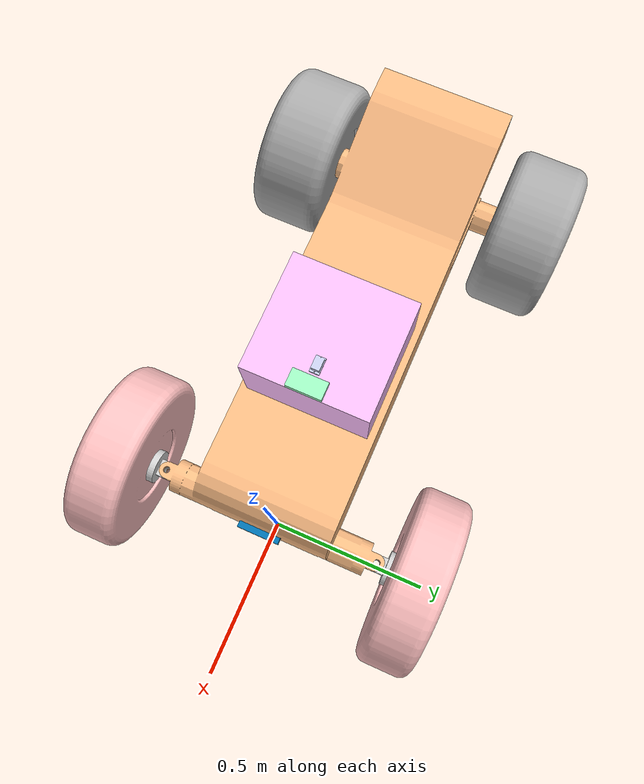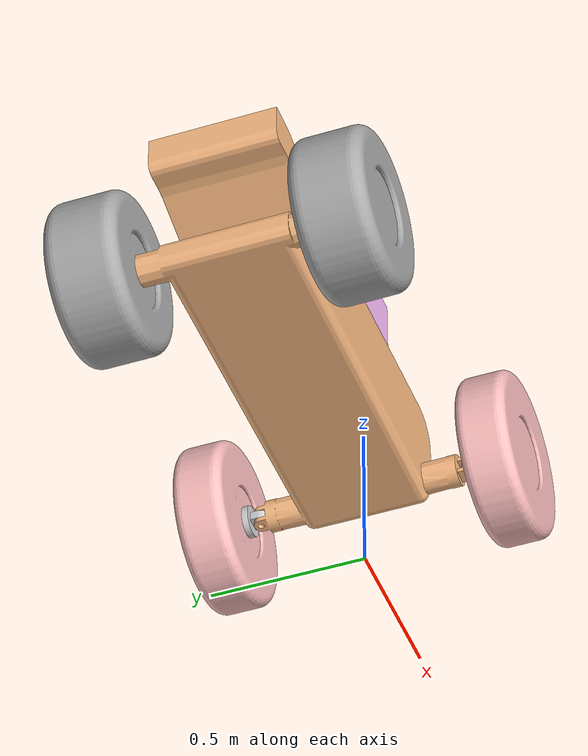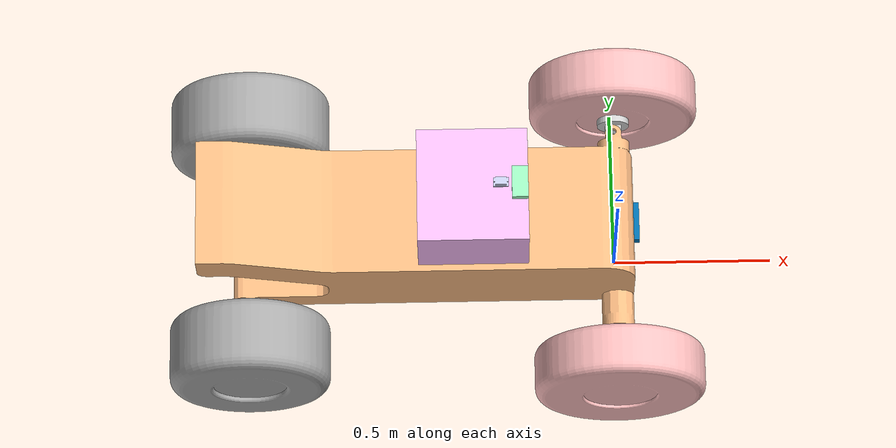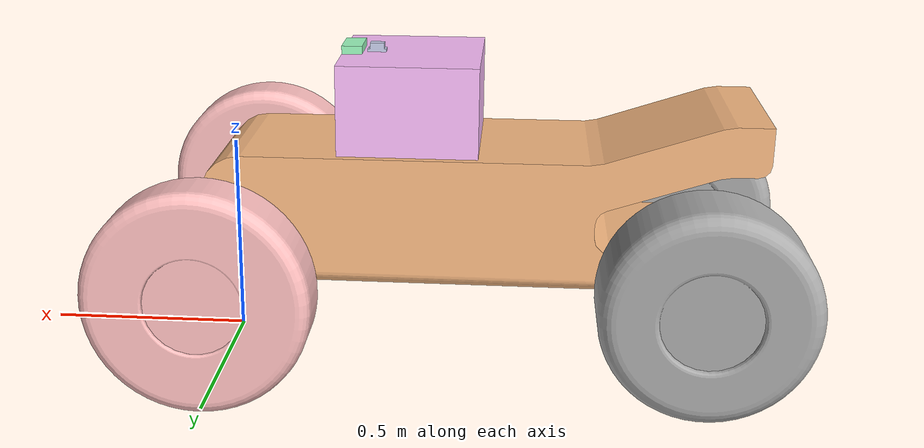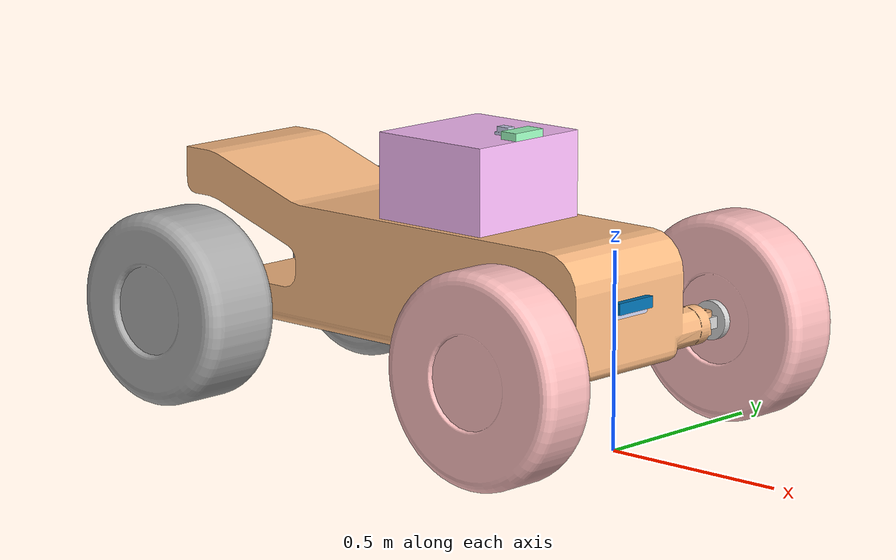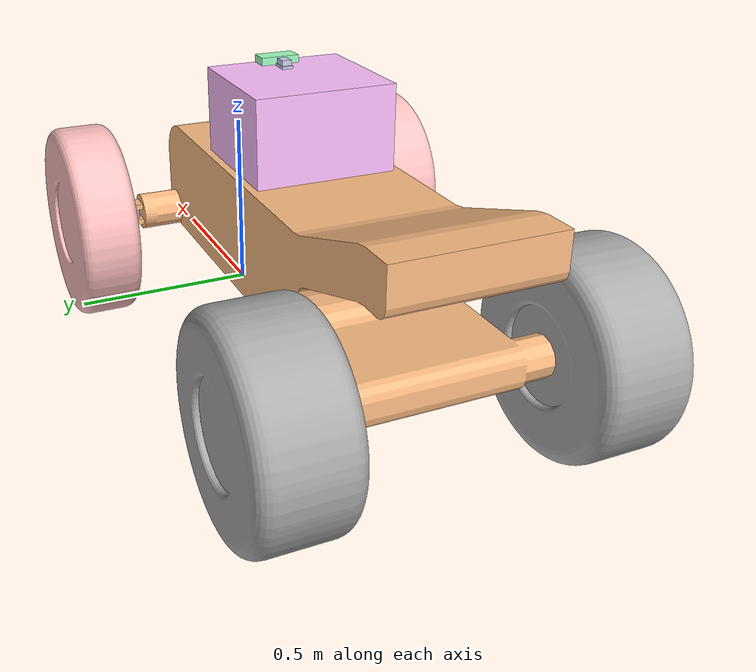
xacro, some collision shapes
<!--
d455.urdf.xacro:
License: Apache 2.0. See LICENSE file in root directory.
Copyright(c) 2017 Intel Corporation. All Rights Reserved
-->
<?xml version="1.0" encoding="utf-8"?>
<robot name="puma_model_camera" xmlns:xacro="http://ros.org/wiki/xacro">
  <xacro:include filename="$(find puma_model_camera)/urdf/puma_model.gazebo.xacro"/>

  <xacro:arg name="use_nominal_extrinsics" default="true"/>
  <xacro:arg name="add_plug" default="false" />
  <xacro:arg name="name" default="camera" />
  <xacro:arg name="topics_ns" default="camera" />
  <xacro:arg name="publish_pointcloud" default="true" />
  <xacro:include filename="$(find puma_model_camera)/urdf/d455.urdf.xacro" />

  <link
    name="base_link">
    <inertial>
      <origin
        xyz="-0.559904066756664 2.52439420520001E-07 0.369470453921975"
        rpy="0 0 0" />
      <mass
        value="154.381267641272" />
      <inertia
        ixx="3.8643546710344"
        ixy="-9.50231640664163E-07"
        ixz="1.15363830622366"
        iyy="22.232099682778"
        iyz="9.01311880646326E-06"
        izz="22.6507305397505" />
    </inertial>
    <visual>
      <origin
        xyz="0 0 0"
        rpy="0 0 0" />
      <geometry>
        <mesh
          filename="package://puma_model_camera/meshes/v2/base_link.STL" />
      </geometry>
      <material
        name="">
        <color
          rgba="0.988235294117647 0.737254901960784 0.517647058823529 1" />
      </material>
    </visual>
    <collision>
      <origin
        xyz="0 0 0"
        rpy="0 0 0" />
      <geometry>
        <mesh
          filename="package://puma_model_camera/meshes/v2/base_link.STL" />
      </geometry>
    </collision>
  </link>
  <link
    name="dir_right_link">
    <inertial>
      <origin
        xyz="-2.22044604925031E-16 -0.0294777193153578 1.11022302462516E-16"
        rpy="0 0 0" />
      <mass
        value="0.214607285846125" />
      <inertia
        ixx="0.000161787233745492"
        ixy="-1.24830140229751E-20"
        ixz="-1.78299811249943E-21"
        iyy="0.000212842937751498"
        iyz="1.23372093603248E-20"
        izz="0.000169651482672632" />
    </inertial>
    <visual>
      <origin
        xyz="0 0 0"
        rpy="0 0 0" />
      <geometry>
        <mesh
          filename="package://puma_model_camera/meshes/v2/dir_right_link.STL" />
      </geometry>
      <material
        name="">
        <color
          rgba="0.823529411764706 0.823529411764706 0.823529411764706 1" />
      </material>
    </visual>
    <collision>
      <origin
        xyz="0 0 0"
        rpy="0 0 0" />
      <geometry>
        <mesh
          filename="package://puma_model_camera/meshes/v2/dir_right_link.STL" />
      </geometry>
    </collision>
  </link>
  <joint
    name="dir_right_joint"
    type="continuous">
    <origin
      xyz="0 -0.337 0.265"
      rpy="0 0 0" />
    <parent
      link="base_link" />
    <child
      link="dir_right_link" />
    <axis
      xyz="0 0 1" />
  </joint>
  <link
    name="wheel_right_front_link">
    <inertial>
      <origin
        xyz="0 1.11022302462516E-16 0.07"
        rpy="0 0 0" />
      <mass
        value="33.8332405777372" />
      <inertia
        ixx="0.663166940004142"
        ixy="1.74598601904134E-32"
        ixz="4.51486827425246E-17"
        iyy="0.663166940004142"
        iyz="1.07735398960113E-17"
        izz="1.19194782788173" />
    </inertial>
    <visual>
      <origin
        xyz="0 0 0"
        rpy="0 0 0" />
      <geometry>
        <mesh
          filename="package://puma_model_camera/meshes/v2/wheel_right_front_link.STL" />
      </geometry>
      <material
        name="">
        <color
          rgba="1 0.752941176470588 0.752941176470588 1" />
      </material>
    </visual>
    <collision>
      <origin
        xyz="0 0 0"
        rpy="0 0 0" />
      <geometry>
        <mesh
          filename="package://puma_model_camera/meshes/v2/wheel_right_front_link.STL" />
      </geometry>
    </collision>
  </link>
  <joint
    name="wheel_right_front_joint"
    type="continuous">
    <origin
      xyz="0 -0.0480000000000001 0"
      rpy="1.5707963267949 0 0" />
    <parent
      link="dir_right_link" />
    <child
      link="wheel_right_front_link" />
    <axis
      xyz="0 0 -1" />
    <dynamics
      friction="1" />
  </joint>
  <link
    name="dir_left_link">
    <inertial>
      <origin
        xyz="0 0.0294777193153578 1.11022302462516E-16"
        rpy="0 0 0" />
      <mass
        value="0.214607285846125" />
      <inertia
        ixx="0.000161787233745492"
        ixy="1.23353249005569E-21"
        ixz="-2.86590106719918E-21"
        iyy="0.000212842937751498"
        iyz="2.66850804551272E-20"
        izz="0.000169651482672632" />
    </inertial>
    <visual>
      <origin
        xyz="0 0 0"
        rpy="0 0 0" />
      <geometry>
        <mesh
          filename="package://puma_model_camera/meshes/v2/dir_left_link.STL" />
      </geometry>
      <material
        name="">
        <color
          rgba="0.823529411764706 0.823529411764706 0.823529411764706 1" />
      </material>
    </visual>
    <collision>
      <origin
        xyz="0 0 0"
        rpy="0 0 0" />
      <geometry>
        <mesh
          filename="package://puma_model_camera/meshes/v2/dir_left_link.STL" />
      </geometry>
    </collision>
  </link>
  <joint
    name="dir_left_joint"
    type="continuous">
    <origin
      xyz="0 0.337 0.265"
      rpy="0 0 0" />
    <parent
      link="base_link" />
    <child
      link="dir_left_link" />
    <axis
      xyz="0 0 1" />
  </joint>
  <link
    name="wheel_left_front_link">
    <inertial>
      <origin
        xyz="0 0 0.0699999999999999"
        rpy="0 0 0" />
      <mass
        value="33.8332405777372" />
      <inertia
        ixx="0.663166940004142"
        ixy="3.62902943280336E-32"
        ixz="-3.47625364951278E-17"
        iyy="0.663166940004142"
        iyz="1.01566182105979E-18"
        izz="1.19194782788173" />
    </inertial>
    <visual>
      <origin
        xyz="0 0 0"
        rpy="0 0 0" />
      <geometry>
        <mesh
          filename="package://puma_model_camera/meshes/v2/wheel_left_front_link.STL" />
      </geometry>
      <material
        name="">
        <color
          rgba="1 0.752941176470588 0.752941176470588 1" />
      </material>
    </visual>
    <collision>
      <origin
        xyz="0 0 0"
        rpy="0 0 0" />
      <geometry>
        <mesh
          filename="package://puma_model_camera/meshes/v2/wheel_left_front_link.STL" />
      </geometry>
    </collision>
  </link>
  <joint
    name="wheel_left_front_joint"
    type="continuous">
    <origin
      xyz="0 0.048 0"
      rpy="1.5707963267949 0 -3.14159265358979" />
    <parent
      link="dir_left_link" />
    <child
      link="wheel_left_front_link" />
    <axis
      xyz="0 0 -1" />
    <dynamics
      friction="1" />
  </joint>
  <link
    name="wheel_right_back_link">
    <inertial>
      <origin
        xyz="0 -1.11022302462516E-16 0.1"
        rpy="0 0 0" />
      <mass
        value="42.8421975932662" />
      <inertia
        ixx="0.843504879614984"
        ixy="-2.17897005442215E-32"
        ixz="6.01287397790473E-17"
        iyy="0.843504879614984"
        iyz="-2.51058847467066E-16"
        izz="1.34196583325215" />
    </inertial>
    <visual>
      <origin
        xyz="0 0 0"
        rpy="0 0 0" />
      <geometry>
        <mesh
          filename="package://puma_model_camera/meshes/v2/wheel_right_back_link.STL" />
      </geometry>
      <material
        name="">
        <color
          rgba="0.666666666666667 0.666666666666667 0.666666666666667 1" />
      </material>
    </visual>
    <collision>
      <origin
        xyz="0 0 0"
        rpy="0 0 0" />
      <geometry>
        <mesh
          filename="package://puma_model_camera/meshes/v2/wheel_right_back_link.STL" />
      </geometry>
    </collision>
  </link>
  <joint
    name="wheel_right_back_joint"
    type="continuous">
    <origin
      xyz="-1.15000189278629 -0.275 0.25"
      rpy="1.5707963267949 0 0" />
    <parent
      link="base_link" />
    <child
      link="wheel_right_back_link" />
    <axis
      xyz="0 0 -1" />
    <dynamics
      friction="1" />
  </joint>
  <link
    name="wheel_left_back_link">
    <inertial>
      <origin
        xyz="1.11022302462516E-16 1.11022302462516E-16 0.1"
        rpy="0 0 0" />
      <mass
        value="42.8421975932662" />
      <inertia
        ixx="0.843504879614984"
        ixy="-4.06685460585995E-33"
        ixz="-3.69567293190446E-18"
        iyy="0.843504879614984"
        iyz="1.64612942139347E-17"
        izz="1.34196583325215" />
    </inertial>
    <visual>
      <origin
        xyz="0 0 0"
        rpy="0 0 0" />
      <geometry>
        <mesh
          filename="package://puma_model_camera/meshes/v2/wheel_left_back_link.STL" />
      </geometry>
      <material
        name="">
        <color
          rgba="0.666666666666667 0.666666666666667 0.666666666666667 1" />
      </material>
    </visual>
    <collision>
      <origin
        xyz="0 0 0"
        rpy="0 0 0" />
      <geometry>
        <mesh
          filename="package://puma_model_camera/meshes/v2/wheel_left_back_link.STL" />
      </geometry>
    </collision>
  </link>
  <joint
    name="wheel_left_back_joint"
    type="continuous">
    <origin
      xyz="-1.15000189278629 0.275 0.25"
      rpy="-1.5707963267949 0 0" />
    <parent
      link="base_link" />
    <child
      link="wheel_left_back_link" />
    <axis
      xyz="0 0 -1" />
    <dynamics
      friction="1" />
  </joint>
  <link
    name="base_component_link">
    <inertial>
      <origin
        xyz="-1.38777878078145E-17 -1.38777878078145E-17 0"
        rpy="0 0 0" />
      <mass
        value="26.928" />
      <inertia
        ixx="0.399432"
        ixy="-5.82648744066697E-18"
        ixz="-6.57606322748783E-34"
        iyy="0.368016"
        iyz="1.74696983473478E-33"
        izz="0.5502288" />
    </inertial>
    <visual>
      <origin
        xyz="0 0 0"
        rpy="0 0 0" />
      <geometry>
        <mesh
          filename="package://puma_model_camera/meshes/v2/base_component_link.STL" />
      </geometry>
      <material
        name="">
        <color
          rgba="1 0.752941176470588 1 1" />
      </material>
    </visual>
    <collision>
      <origin
        xyz="0 0 0"
        rpy="0 0 0" />
      <geometry>
        <mesh
          filename="package://puma_model_camera/meshes/v2/base_component_link.STL" />
      </geometry>
    </collision>
  </link>
  <joint
    name="base_component_joint"
    type="fixed">
    <origin
      xyz="-0.450001892786288 0 0.63"
      rpy="0 0 0" />
    <parent
      link="base_link" />
    <child
      link="base_component_link" />
    <axis
      xyz="0 0 0" />
  </joint>
  <link
    name="gps_link">
    <inertial>
      <origin
        xyz="0 -1.38777878078145E-17 -0.01"
        rpy="0 0 0" />
      <mass
        value="0.1" />
      <inertia
        ixx="8.66666666666668E-05"
        ixy="-6.77626357802914E-24"
        ixz="1.44560289664734E-22"
        iyy="2.41666666666667E-05"
        iyz="-2.17743936307504E-22"
        izz="0.000104166666666667" />
    </inertial>
    <visual>
      <origin
        xyz="0 0 0"
        rpy="0 0 0" />
      <geometry>
        <mesh
          filename="package://puma_model_camera/meshes/v2/gps_link.STL" />
      </geometry>
      <material
        name="">
        <color
          rgba="0.623529411764706 1 0.76078431372549 1" />
      </material>
    </visual>
    <collision>
      <origin
        xyz="0 0 0"
        rpy="0 0 0" />
      <geometry>
        <mesh
          filename="package://puma_model_camera/meshes/v2/gps_link.STL" />
      </geometry>
    </collision>
  </link>
  <joint
    name="gps_joint"
    type="fixed">
    <origin
      xyz="-0.305001892786288 0 0.76"
      rpy="0 0 0" />
    <parent
      link="base_link" />
    <child
      link="gps_link" />
    <axis
      xyz="0 0 0" />
  </joint>
  <link
    name="imu_link">
    <inertial>
      <origin
        xyz="5.08055300385557E-07 -0.000195569944066151 -0.0121628383871961"
        rpy="0 0 0" />
      <mass
        value="0.0106550387325199" />
      <inertia
        ixx="1.16705248203446E-06"
        ixy="2.03256158405584E-11"
        ixz="2.11642113815375E-12"
        iyy="2.20541869708662E-06"
        iyz="-8.14691556822213E-10"
        izz="2.78315231388432E-06" />
    </inertial>
    <visual>
      <origin
        xyz="0 0 0"
        rpy="0 0 0" />
      <geometry>
        <mesh
          filename="package://puma_model_camera/meshes/v2/imu_link.STL" />
      </geometry>
      <material
        name="">
        <color
          rgba="0.792156862745098 0.819607843137255 0.933333333333333 1" />
      </material>
    </visual>
    <collision>
      <origin
        xyz="0 0 0"
        rpy="0 0 0" />
      <geometry>
        <mesh
          filename="package://puma_model_camera/meshes/v2/imu_link.STL" />
      </geometry>
    </collision>
  </link>
  <joint
    name="imu_joint"
    type="fixed">
    <origin
      xyz="-0.363001892786288 0.00300000000000007 0.761"
      rpy="0 0 0" />
    <parent
      link="base_link" />
    <child
      link="imu_link" />
    <axis
      xyz="0 0 0" />
  </joint>
  <link
    name="camara_link">
    <inertial>
      <origin
        xyz="-0.00149999999999995 2.77555756156289E-17 -1.11022302462516E-16"
        rpy="0 0.0872665 0" />
      <mass
        value="0.0105304777960769" />
      <inertia
        ixx="1.36186520257664E-05"
        ixy="-2.34298407531536E-24"
        ixz="-5.96948675392447E-24"
        iyy="7.24303978619533E-07"
        iyz="8.97261282281197E-22"
        izz="1.2910143763841E-05" />
    </inertial>
    <visual>
      <origin
        xyz="0 0 0"
        rpy="0 0 0" />
      <geometry>
        <mesh
          filename="package://puma_model_camera/meshes/v2/camara_link.STL" />
      </geometry>
      <material
        name="">
        <color
          rgba="0.792156862745098 0.819607843137255 0.933333333333333 1" />
      </material>
    </visual>
    <collision>
      <origin
        xyz="0 0 0"
        rpy="0 0 0" />
      <geometry>
        <mesh
          filename="package://puma_model_camera/meshes/v2/camara_link.STL" />
      </geometry>
    </collision>
  </link>
  <joint
    name="camara_joint"
    type="fixed">
    <origin
      xyz="0.0529981072137121 0 0.36"
      rpy="0 0 0" />
    <parent
      link="base_link" />
    <child
      link="camara_link" />
    <axis
      xyz="0 0 0" />
  </joint>

  <xacro:sensor_d455 parent="camara_link" use_nominal_extrinsics="$(arg use_nominal_extrinsics)" add_plug="$(arg add_plug)"  name="$(arg name)" topics_ns="$(arg topics_ns)" publish_pointcloud="$(arg publish_pointcloud)">
    <origin xyz="0 0 0" rpy="0 0 0"/>
  </xacro:sensor_d455>

</robot>

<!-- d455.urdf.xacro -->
<robot name="sensor_d455" xmlns:xacro="http://ros.org/wiki/xacro">
  <!-- Includes -->
  <xacro:include filename="$(find puma_model_camera)/urdf/d455.gazebo.xacro" />
  <xacro:include filename="$(find puma_model_camera)/urdf/_materials.urdf.xacro" />
  <xacro:include filename="$(find puma_model_camera)/urdf/_usb_plug.urdf.xacro" />

  <xacro:macro name="sensor_d455" params="parent *origin name:=camera use_nominal_extrinsics:=false add_plug:=false topics_ns:=camera publish_pointcloud:=true">
    <xacro:arg name="add_plug" default="false" />
    <xacro:property name="M_PI" value="3.1415926535897931" />

    <!-- The following values are approximate, and the camera node
     publishing TF values with actual calibrated camera extrinsic values -->
    <xacro:property name="d455_cam_depth_to_infra1_offset" value="0.0"/>
    <xacro:property name="d455_cam_depth_to_infra2_offset" value="-0.095"/>
    <xacro:property name="d455_cam_depth_to_color_offset" value="-0.059"/>

    <!-- The following values model the aluminum peripherial case for the
  	d455 camera, with the camera joint represented by the actual
  	peripherial camera tripod mount -->
    <xacro:property name="d455_cam_width" value="0.124"/>
    <xacro:property name="d455_cam_height" value="0.029"/>
    <xacro:property name="d455_cam_depth" value="0.026"/>
    <xacro:property name="d455_cam_mount_from_center_offset" value="0.0158"/>
    <!-- glass cover is 0.1 mm inwards from front aluminium plate -->
    <xacro:property name="d455_glass_to_front" value="0.1e-3"/>
    <!-- see datasheet Revision 009, Fig. 4-4 page 68 -->
    <xacro:property name="d455_zero_depth_to_glass" value="4.55e-3"/>
    <!-- convenience precomputation to avoid clutter-->
    <xacro:property name="d455_mesh_x_offset" value="${d455_cam_mount_from_center_offset-d455_glass_to_front-d455_zero_depth_to_glass}"/>

    <!-- The following offset is relative to the physical d455 camera peripherial
  	camera tripod mount -->
    <xacro:property name="d455_cam_depth_px" value="${d455_cam_mount_from_center_offset}"/>
    <xacro:property name="d455_cam_depth_py" value="0.0475"/>
    <xacro:property name="d455_cam_depth_pz" value="${d455_cam_height/2}"/>

    <!-- camera body, with origin at bottom screw mount -->
    <joint name="${name}_joint" type="fixed">
      <xacro:insert_block name="origin" />
      <parent link="${parent}"/>
      <child link="${name}_bottom_screw_frame" />
    </joint>
    <link name="${name}_bottom_screw_frame"/>

    <joint name="${name}_link_joint" type="fixed">
      <origin xyz="${d455_mesh_x_offset} ${d455_cam_depth_py} ${d455_cam_depth_pz}" rpy="0 0 0"/>
      <parent link="${name}_bottom_screw_frame"/>
      <child link="${name}_link" />
    </joint>

    <link name="${name}_link">
      <visual>
        <!-- the mesh origin is at front plate in between the two infrared camera axes -->
        <origin xyz="${d455_zero_depth_to_glass + d455_glass_to_front} ${-d455_cam_depth_py} 0" rpy="${M_PI/2} 0 ${M_PI/2}"/>
        <geometry>
	        <mesh filename="package://puma_model_camera/meshes/d455.stl" scale="0.001 0.001 0.001" />
        </geometry>
        <material name="aluminum"/>
      </visual>
      <collision>
        <origin xyz="${d455_zero_depth_to_glass-d455_cam_depth/2} ${-d455_cam_depth_py} 0" rpy="0 0 0"/>
        <geometry>
          <box size="${d455_cam_depth} ${d455_cam_width} ${d455_cam_height}"/>
        </geometry>
      </collision>
      <inertial>
        <!-- The following are not reliable values, and should not be used for modeling -->
        <mass value="0.072" />
        <origin xyz="0 0 0" />
        <inertia ixx="0.003881243" ixy="0.0" ixz="0.0" iyy="0.000498940" iyz="0.0" izz="0.003879257" />
      </inertial>
    </link>

    <!-- Use the nominal extrinsics between camera frames if the calibrated extrinsics aren't being published. e.g. running the device in simulation  -->
    <xacro:if value="${use_nominal_extrinsics}">
      <!-- camera depth joints and links -->
      <joint name="${name}_depth_joint" type="fixed">
        <origin xyz="0 0 0" rpy="0 0 0"/>
        <parent link="${name}_link"/>
        <child link="${name}_depth_frame" />
      </joint>
      <link name="${name}_depth_frame"/>

      <joint name="${name}_depth_optical_joint" type="fixed">
        <origin xyz="0 0 0" rpy="${-M_PI/2} 0 ${-M_PI/2}" />
        <parent link="${name}_depth_frame" />
        <child link="${name}_depth_optical_frame" />
      </joint>
      <link name="${name}_depth_optical_frame"/>

      <!-- camera left IR joints and links -->
      <joint name="${name}_infra1_joint" type="fixed">
        <origin xyz="0 ${d455_cam_depth_to_infra1_offset} 0" rpy="0 0 0" />
        <parent link="${name}_link" />
        <child link="${name}_infra1_frame" />
      </joint>
      <link name="${name}_infra1_frame"/>

      <joint name="${name}_infra1_optical_joint" type="fixed">
        <origin xyz="0 0 0" rpy="${-M_PI/2} 0 ${-M_PI/2}" />
        <parent link="${name}_infra1_frame" />
        <child link="${name}_infra1_optical_frame" />
      </joint>
      <link name="${name}_infra1_optical_frame"/>

      <!-- camera right IR joints and links -->
      <joint name="${name}_infra2_joint" type="fixed">
        <origin xyz="0 ${d455_cam_depth_to_infra2_offset} 0" rpy="0 0 0" />
        <parent link="${name}_link" />
        <child link="${name}_infra2_frame" />
      </joint>
      <link name="${name}_infra2_frame"/>

      <joint name="${name}_infra2_optical_joint" type="fixed">
        <origin xyz="0 0 0" rpy="${-M_PI/2} 0 ${-M_PI/2}" />
        <parent link="${name}_infra2_frame" />
        <child link="${name}_infra2_optical_frame" />
      </joint>
      <link name="${name}_infra2_optical_frame"/>

      <!-- camera color joints and links -->
      <joint name="${name}_color_joint" type="fixed">
        <origin xyz="0 ${d455_cam_depth_to_color_offset} 0" rpy="0 0 0" />
        <parent link="${name}_link" />
        <child link="${name}_color_frame" />
      </joint>
      <link name="${name}_color_frame"/>

      <joint name="${name}_color_optical_joint" type="fixed">
        <origin xyz="0 0 0" rpy="${-M_PI/2} 0 ${-M_PI/2}" />
        <parent link="${name}_color_frame" />
        <child link="${name}_color_optical_frame" />
      </joint>
      <link name="${name}_color_optical_frame"/>

      <!-- IMU -->
      <!-- see datasheet Revision 009, page 114 -->
      <xacro:property name="d455_imu_px" value="-0.01602"/>
      <xacro:property name="d455_imu_py" value="-0.03022"/>
      <xacro:property name="d455_imu_pz" value="+0.0074"/>

      <link name="${name}_accel_frame" />
      <link name="${name}_accel_optical_frame" />
      <link name="${name}_gyro_frame" />
      <link name="${name}_gyro_optical_frame" />
      <link name="${name}_imu_optical_frame" />

      <joint name="${name}_accel_joint" type="fixed">
        <origin xyz = "${d455_imu_px} ${d455_imu_py} ${d455_imu_pz}" rpy = "0 0 0" />
        <parent link="${name}_link" />
        <child link="${name}_accel_frame" />
      </joint>

      <joint name="${name}_accel_optical_joint" type="fixed">
        <origin xyz = "0 0 0" rpy = "${-M_PI/2} 0 ${-M_PI/2}" />
        <parent link="${name}_accel_frame" />
        <child link="${name}_accel_optical_frame" />
      </joint>

      <joint name="${name}_gyro_joint" type="fixed">
        <origin xyz = "${d455_imu_px} ${d455_imu_py} ${d455_imu_pz}" rpy = "0 0 0" />
        <parent link="${name}_link" />
        <child link="${name}_gyro_frame" />
      </joint>

      <joint name="${name}_gyro_optical_joint" type="fixed">
        <origin xyz = "0 0 0" rpy = "${-M_PI/2} 0 ${-M_PI/2}" />
        <parent link="${name}_gyro_frame" />
        <child link="${name}_gyro_optical_frame" />
      </joint>

      <joint name="${name}_imu_optical_joint" type="fixed">
        <origin xyz = "0 0 0" rpy = "0 0 0" />
        <parent link="${name}_gyro_optical_frame" />
        <child link="${name}_imu_optical_frame" />
      </joint>
    </xacro:if>

    <xacro:if value="$(arg add_plug)">
      <xacro:usb_plug parent="${name}_link" name="${name}_usb_plug">
        <origin xyz="${-0.00406-d455_cam_depth_px} ${-0.03701-d455_cam_depth_py} ${-d455_cam_depth_pz}" rpy="${M_PI/2} 0 0"/>
      </xacro:usb_plug>
    </xacro:if>

    <!-- Realsense Gazebo Plugin -->
    <xacro:gazebo_d455 camera_name="${name}" reference_link="${name}_link" topics_ns="${topics_ns}" depth_optical_frame="${name}_depth_optical_frame" color_optical_frame="${name}_color_optical_frame" infrared1_optical_frame="${name}_left_ir_optical_frame" infrared2_optical_frame="${name}_right_ir_optical_frame" publish_pointcloud="${publish_pointcloud}"/>

  </xacro:macro>
</robot>
